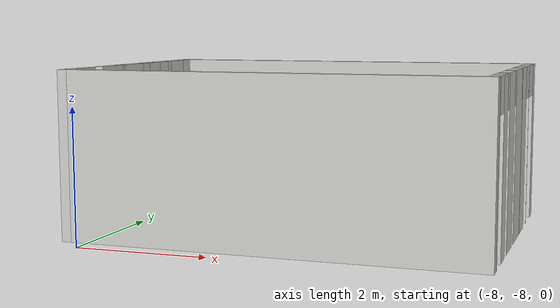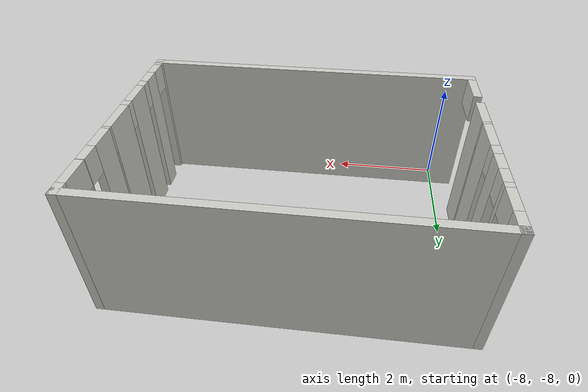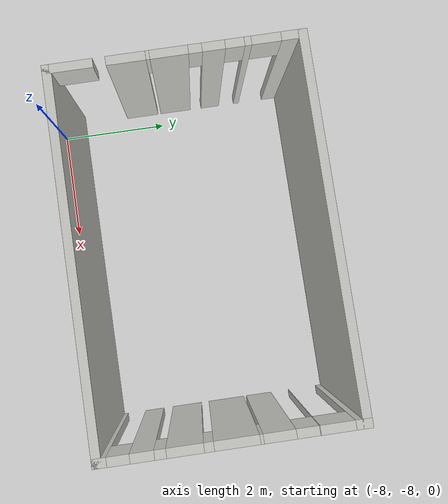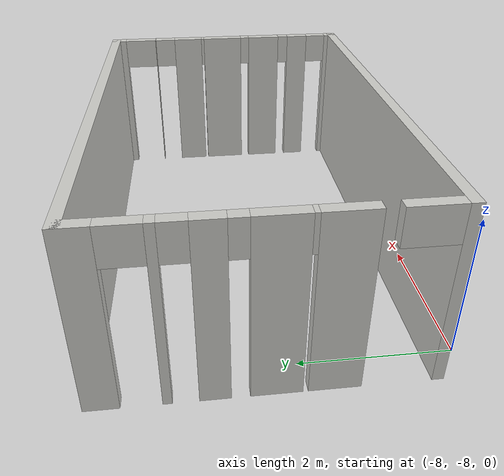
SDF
<?xml version='1.0'?>
<sdf version='1.7'>
  <model name='piste'>
    <pose>-4.20498 -3.85958 0 0 -0 0</pose>
    <link name='Wall_5'>
      <pose>-4.12998 -1.73458 0 0 -0 1.5708</pose>
      <visual name='Wall_5_Visual_0'>
        <pose>-2.0675 0 1.25 0 -0 0</pose>
        <geometry>
          <box>
            <size>0.115 0.15 2.5</size>
          </box>
        </geometry>
        <material>
          <script>
            <uri>file://media/materials/scripts/gazebo.material</uri>
            <name>Gazebo/CeilingTiled</name>
          </script>
          <ambient>1 1 1 1</ambient>
        </material>
        <meta>
          <layer>0</layer>
        </meta>
      </visual>
      <collision name='Wall_5_Collision_0'>
        <geometry>
          <box>
            <size>0.115 0.15 2.5</size>
          </box>
        </geometry>
        <pose>-2.0675 0 1.25 0 -0 0</pose>
      </collision>
      <visual name='Wall_5_Visual_1'>
        <pose>-0.79 0 1.25 0 -0 0</pose>
        <geometry>
          <box>
            <size>0.64 0.15 2.5</size>
          </box>
        </geometry>
        <material>
          <script>
            <uri>file://media/materials/scripts/gazebo.material</uri>
            <name>Gazebo/CeilingTiled</name>
          </script>
          <ambient>1 1 1 1</ambient>
        </material>
        <meta>
          <layer>0</layer>
        </meta>
      </visual>
      <collision name='Wall_5_Collision_1'>
        <geometry>
          <box>
            <size>0.64 0.15 2.5</size>
          </box>
        </geometry>
        <pose>-0.79 0 1.25 0 -0 0</pose>
      </collision>
      <visual name='Wall_5_Visual_2'>
        <pose>-0.1 0 1.25 0 -0 0</pose>
        <geometry>
          <box>
            <size>0.62 0.15 2.5</size>
          </box>
        </geometry>
        <material>
          <script>
            <uri>file://media/materials/scripts/gazebo.material</uri>
            <name>Gazebo/CeilingTiled</name>
          </script>
          <ambient>1 1 1 1</ambient>
        </material>
        <meta>
          <layer>0</layer>
        </meta>
      </visual>
      <collision name='Wall_5_Collision_2'>
        <geometry>
          <box>
            <size>0.62 0.15 2.5</size>
          </box>
        </geometry>
        <pose>-0.1 0 1.25 0 -0 0</pose>
      </collision>
      <visual name='Wall_5_Visual_3'>
        <pose>0.615 0 1.25 0 -0 0</pose>
        <geometry>
          <box>
            <size>0.37 0.15 2.5</size>
          </box>
        </geometry>
        <material>
          <script>
            <uri>file://media/materials/scripts/gazebo.material</uri>
            <name>Gazebo/CeilingTiled</name>
          </script>
          <ambient>1 1 1 1</ambient>
        </material>
        <meta>
          <layer>0</layer>
        </meta>
      </visual>
      <collision name='Wall_5_Collision_3'>
        <geometry>
          <box>
            <size>0.37 0.15 2.5</size>
          </box>
        </geometry>
        <pose>0.615 0 1.25 0 -0 0</pose>
      </collision>
      <visual name='Wall_5_Visual_4'>
        <pose>1.165 0 1.25 0 -0 0</pose>
        <geometry>
          <box>
            <size>0.11 0.15 2.5</size>
          </box>
        </geometry>
        <material>
          <script>
            <uri>file://media/materials/scripts/gazebo.material</uri>
            <name>Gazebo/CeilingTiled</name>
          </script>
          <ambient>1 1 1 1</ambient>
        </material>
        <meta>
          <layer>0</layer>
        </meta>
      </visual>
      <collision name='Wall_5_Collision_4'>
        <geometry>
          <box>
            <size>0.11 0.15 2.5</size>
          </box>
        </geometry>
        <pose>1.165 0 1.25 0 -0 0</pose>
      </collision>
      <visual name='Wall_5_Visual_5'>
        <pose>1.9125 0 1.25 0 -0 0</pose>
        <geometry>
          <box>
            <size>0.425 0.15 2.5</size>
          </box>
        </geometry>
        <material>
          <script>
            <uri>file://media/materials/scripts/gazebo.material</uri>
            <name>Gazebo/CeilingTiled</name>
          </script>
          <ambient>1 1 1 1</ambient>
        </material>
        <meta>
          <layer>0</layer>
        </meta>
      </visual>
      <collision name='Wall_5_Collision_5'>
        <geometry>
          <box>
            <size>0.425 0.15 2.5</size>
          </box>
        </geometry>
        <pose>1.9125 0 1.25 0 -0 0</pose>
      </collision>
      <visual name='Wall_5_Visual_6'>
        <pose>2.1225 0 1.25 0 -0 0</pose>
        <geometry>
          <box>
            <size>0.005 0.15 2.5</size>
          </box>
        </geometry>
        <material>
          <script>
            <uri>file://media/materials/scripts/gazebo.material</uri>
            <name>Gazebo/CeilingTiled</name>
          </script>
          <ambient>1 1 1 1</ambient>
        </material>
        <meta>
          <layer>0</layer>
        </meta>
      </visual>
      <collision name='Wall_5_Collision_6'>
        <geometry>
          <box>
            <size>0.005 0.15 2.5</size>
          </box>
        </geometry>
        <pose>2.1225 0 1.25 0 -0 0</pose>
      </collision>
      <visual name='Wall_5_Visual_7'>
        <pose>-1.66 0 2.25 0 -0 0</pose>
        <geometry>
          <box>
            <size>0.7 0.15 0.5</size>
          </box>
        </geometry>
        <material>
          <script>
            <uri>file://media/materials/scripts/gazebo.material</uri>
            <name>Gazebo/CeilingTiled</name>
          </script>
          <ambient>1 1 1 1</ambient>
        </material>
        <meta>
          <layer>0</layer>
        </meta>
      </visual>
      <collision name='Wall_5_Collision_7'>
        <geometry>
          <box>
            <size>0.7 0.15 0.5</size>
          </box>
        </geometry>
        <pose>-1.66 0 2.25 0 -0 0</pose>
      </collision>
      <visual name='Wall_5_Visual_8'>
        <pose>-0.44 0 2.25 0 -0 0</pose>
        <geometry>
          <box>
            <size>0.06 0.15 0.5</size>
          </box>
        </geometry>
        <material>
          <script>
            <uri>file://media/materials/scripts/gazebo.material</uri>
            <name>Gazebo/CeilingTiled</name>
          </script>
          <ambient>1 1 1 1</ambient>
        </material>
        <meta>
          <layer>0</layer>
        </meta>
      </visual>
      <collision name='Wall_5_Collision_8'>
        <geometry>
          <box>
            <size>0.06 0.15 0.5</size>
          </box>
        </geometry>
        <pose>-0.44 0 2.25 0 -0 0</pose>
      </collision>
      <visual name='Wall_5_Visual_9'>
        <pose>0.32 0 2.25 0 -0 0</pose>
        <geometry>
          <box>
            <size>0.22 0.15 0.5</size>
          </box>
        </geometry>
        <material>
          <script>
            <uri>file://media/materials/scripts/gazebo.material</uri>
            <name>Gazebo/CeilingTiled</name>
          </script>
          <ambient>1 1 1 1</ambient>
        </material>
        <meta>
          <layer>0</layer>
        </meta>
      </visual>
      <collision name='Wall_5_Collision_9'>
        <geometry>
          <box>
            <size>0.22 0.15 0.5</size>
          </box>
        </geometry>
        <pose>0.32 0 2.25 0 -0 0</pose>
      </collision>
      <visual name='Wall_5_Visual_10'>
        <pose>0.955 0 2.25 0 -0 0</pose>
        <geometry>
          <box>
            <size>0.31 0.15 0.5</size>
          </box>
        </geometry>
        <material>
          <script>
            <uri>file://media/materials/scripts/gazebo.material</uri>
            <name>Gazebo/CeilingTiled</name>
          </script>
          <ambient>1 1 1 1</ambient>
        </material>
        <meta>
          <layer>0</layer>
        </meta>
      </visual>
      <collision name='Wall_5_Collision_10'>
        <geometry>
          <box>
            <size>0.31 0.15 0.5</size>
          </box>
        </geometry>
        <pose>0.955 0 2.25 0 -0 0</pose>
      </collision>
      <visual name='Wall_5_Visual_11'>
        <pose>1.46 0 2.25 0 -0 0</pose>
        <geometry>
          <box>
            <size>0.48 0.15 0.5</size>
          </box>
        </geometry>
        <material>
          <script>
            <uri>file://media/materials/scripts/gazebo.material</uri>
            <name>Gazebo/CeilingTiled</name>
          </script>
          <ambient>1 1 1 1</ambient>
        </material>
        <meta>
          <layer>0</layer>
        </meta>
      </visual>
      <collision name='Wall_5_Collision_11'>
        <geometry>
          <box>
            <size>0.48 0.15 0.5</size>
          </box>
        </geometry>
        <pose>1.46 0 2.25 0 -0 0</pose>
      </collision>
    </link>
    <link name='Wall_6'>
      <collision name='Wall_6_Collision'>
        <geometry>
          <box>
            <size>6.25 0.15 2.5</size>
          </box>
        </geometry>
        <pose>0 0 1.25 0 -0 0</pose>
      </collision>
      <visual name='Wall_6_Visual'>
        <pose>0 0 1.25 0 -0 0</pose>
        <geometry>
          <box>
            <size>6.25 0.15 2.5</size>
          </box>
        </geometry>
        <material>
          <script>
            <uri>file://media/materials/scripts/gazebo.material</uri>
            <name>Gazebo/CeilingTiled</name>
          </script>
          <ambient>1 1 1 1</ambient>
        </material>
        <meta>
          <layer>0</layer>
        </meta>
      </visual>
      <pose>-1.07998 0.315418 0 0 -0 0</pose>
    </link>
    <link name='Wall_7'>
      <pose>1.97002 -1.73458 0 0 -0 -1.5708</pose>
      <visual name='Wall_7_Visual_0'>
        <pose>-1.9975 0 1.25 0 -0 0</pose>
        <geometry>
          <box>
            <size>0.255 0.15 2.5</size>
          </box>
        </geometry>
        <material>
          <script>
            <uri>file://media/materials/scripts/gazebo.material</uri>
            <name>Gazebo/CeilingTiled</name>
          </script>
          <ambient>1 1 1 1</ambient>
        </material>
        <meta>
          <layer>0</layer>
        </meta>
      </visual>
      <collision name='Wall_7_Collision_0'>
        <geometry>
          <box>
            <size>0.255 0.15 2.5</size>
          </box>
        </geometry>
        <pose>-1.9975 0 1.25 0 -0 0</pose>
      </collision>
      <visual name='Wall_7_Visual_1'>
        <pose>-1.325 0 1.25 0 -0 0</pose>
        <geometry>
          <box>
            <size>0.01 0.15 2.5</size>
          </box>
        </geometry>
        <material>
          <script>
            <uri>file://media/materials/scripts/gazebo.material</uri>
            <name>Gazebo/CeilingTiled</name>
          </script>
          <ambient>1 1 1 1</ambient>
        </material>
        <meta>
          <layer>0</layer>
        </meta>
      </visual>
      <collision name='Wall_7_Collision_1'>
        <geometry>
          <box>
            <size>0.01 0.15 2.5</size>
          </box>
        </geometry>
        <pose>-1.325 0 1.25 0 -0 0</pose>
      </collision>
      <visual name='Wall_7_Visual_2'>
        <pose>-0.72 0 1.25 0 -0 0</pose>
        <geometry>
          <box>
            <size>0.5 0.15 2.5</size>
          </box>
        </geometry>
        <material>
          <script>
            <uri>file://media/materials/scripts/gazebo.material</uri>
            <name>Gazebo/CeilingTiled</name>
          </script>
          <ambient>1 1 1 1</ambient>
        </material>
        <meta>
          <layer>0</layer>
        </meta>
      </visual>
      <collision name='Wall_7_Collision_2'>
        <geometry>
          <box>
            <size>0.5 0.15 2.5</size>
          </box>
        </geometry>
        <pose>-0.72 0 1.25 0 -0 0</pose>
      </collision>
      <visual name='Wall_7_Visual_3'>
        <pose>-0.07 0 1.25 0 -0 0</pose>
        <geometry>
          <box>
            <size>0.7 0.15 2.5</size>
          </box>
        </geometry>
        <material>
          <script>
            <uri>file://media/materials/scripts/gazebo.material</uri>
            <name>Gazebo/CeilingTiled</name>
          </script>
          <ambient>1 1 1 1</ambient>
        </material>
        <meta>
          <layer>0</layer>
        </meta>
      </visual>
      <collision name='Wall_7_Collision_3'>
        <geometry>
          <box>
            <size>0.7 0.15 2.5</size>
          </box>
        </geometry>
        <pose>-0.07 0 1.25 0 -0 0</pose>
      </collision>
      <visual name='Wall_7_Visual_4'>
        <pose>0.715 0 1.25 0 -0 0</pose>
        <geometry>
          <box>
            <size>0.57 0.15 2.5</size>
          </box>
        </geometry>
        <material>
          <script>
            <uri>file://media/materials/scripts/gazebo.material</uri>
            <name>Gazebo/CeilingTiled</name>
          </script>
          <ambient>1 1 1 1</ambient>
        </material>
        <meta>
          <layer>0</layer>
        </meta>
      </visual>
      <collision name='Wall_7_Collision_4'>
        <geometry>
          <box>
            <size>0.57 0.15 2.5</size>
          </box>
        </geometry>
        <pose>0.715 0 1.25 0 -0 0</pose>
      </collision>
      <visual name='Wall_7_Visual_5'>
        <pose>1.365 0 1.25 0 -0 0</pose>
        <geometry>
          <box>
            <size>0.37 0.15 2.5</size>
          </box>
        </geometry>
        <material>
          <script>
            <uri>file://media/materials/scripts/gazebo.material</uri>
            <name>Gazebo/CeilingTiled</name>
          </script>
          <ambient>1 1 1 1</ambient>
        </material>
        <meta>
          <layer>0</layer>
        </meta>
      </visual>
      <collision name='Wall_7_Collision_5'>
        <geometry>
          <box>
            <size>0.37 0.15 2.5</size>
          </box>
        </geometry>
        <pose>1.365 0 1.25 0 -0 0</pose>
      </collision>
      <visual name='Wall_7_Visual_6'>
        <pose>2.0125 0 1.25 0 -0 0</pose>
        <geometry>
          <box>
            <size>0.225 0.15 2.5</size>
          </box>
        </geometry>
        <material>
          <script>
            <uri>file://media/materials/scripts/gazebo.material</uri>
            <name>Gazebo/CeilingTiled</name>
          </script>
          <ambient>1 1 1 1</ambient>
        </material>
        <meta>
          <layer>0</layer>
        </meta>
      </visual>
      <collision name='Wall_7_Collision_6'>
        <geometry>
          <box>
            <size>0.225 0.15 2.5</size>
          </box>
        </geometry>
        <pose>2.0125 0 1.25 0 -0 0</pose>
      </collision>
      <visual name='Wall_7_Visual_7'>
        <pose>-1.6 0 2.25 0 -0 0</pose>
        <geometry>
          <box>
            <size>0.54 0.15 0.5</size>
          </box>
        </geometry>
        <material>
          <script>
            <uri>file://media/materials/scripts/gazebo.material</uri>
            <name>Gazebo/CeilingTiled</name>
          </script>
          <ambient>1 1 1 1</ambient>
        </material>
        <meta>
          <layer>0</layer>
        </meta>
      </visual>
      <collision name='Wall_7_Collision_7'>
        <geometry>
          <box>
            <size>0.54 0.15 0.5</size>
          </box>
        </geometry>
        <pose>-1.6 0 2.25 0 -0 0</pose>
      </collision>
      <visual name='Wall_7_Visual_8'>
        <pose>-1.145 0 2.25 0 -0 0</pose>
        <geometry>
          <box>
            <size>0.35 0.15 0.5</size>
          </box>
        </geometry>
        <material>
          <script>
            <uri>file://media/materials/scripts/gazebo.material</uri>
            <name>Gazebo/CeilingTiled</name>
          </script>
          <ambient>1 1 1 1</ambient>
        </material>
        <meta>
          <layer>0</layer>
        </meta>
      </visual>
      <collision name='Wall_7_Collision_8'>
        <geometry>
          <box>
            <size>0.35 0.15 0.5</size>
          </box>
        </geometry>
        <pose>-1.145 0 2.25 0 -0 0</pose>
      </collision>
      <visual name='Wall_7_Visual_9'>
        <pose>-0.445 0 2.25 0 -0 0</pose>
        <geometry>
          <box>
            <size>0.05 0.15 0.5</size>
          </box>
        </geometry>
        <material>
          <script>
            <uri>file://media/materials/scripts/gazebo.material</uri>
            <name>Gazebo/CeilingTiled</name>
          </script>
          <ambient>1 1 1 1</ambient>
        </material>
        <meta>
          <layer>0</layer>
        </meta>
      </visual>
      <collision name='Wall_7_Collision_9'>
        <geometry>
          <box>
            <size>0.05 0.15 0.5</size>
          </box>
        </geometry>
        <pose>-0.445 0 2.25 0 -0 0</pose>
      </collision>
      <visual name='Wall_7_Visual_10'>
        <pose>0.355 0 2.25 0 -0 0</pose>
        <geometry>
          <box>
            <size>0.15 0.15 0.5</size>
          </box>
        </geometry>
        <material>
          <script>
            <uri>file://media/materials/scripts/gazebo.material</uri>
            <name>Gazebo/CeilingTiled</name>
          </script>
          <ambient>1 1 1 1</ambient>
        </material>
        <meta>
          <layer>0</layer>
        </meta>
      </visual>
      <collision name='Wall_7_Collision_10'>
        <geometry>
          <box>
            <size>0.15 0.15 0.5</size>
          </box>
        </geometry>
        <pose>0.355 0 2.25 0 -0 0</pose>
      </collision>
      <visual name='Wall_7_Visual_11'>
        <pose>1.09 0 2.25 0 -0 0</pose>
        <geometry>
          <box>
            <size>0.18 0.15 0.5</size>
          </box>
        </geometry>
        <material>
          <script>
            <uri>file://media/materials/scripts/gazebo.material</uri>
            <name>Gazebo/CeilingTiled</name>
          </script>
          <ambient>1 1 1 1</ambient>
        </material>
        <meta>
          <layer>0</layer>
        </meta>
      </visual>
      <collision name='Wall_7_Collision_11'>
        <geometry>
          <box>
            <size>0.18 0.15 0.5</size>
          </box>
        </geometry>
        <pose>1.09 0 2.25 0 -0 0</pose>
      </collision>
      <visual name='Wall_7_Visual_12'>
        <pose>1.725 0 2.25 0 -0 0</pose>
        <geometry>
          <box>
            <size>0.35 0.15 0.5</size>
          </box>
        </geometry>
        <material>
          <script>
            <uri>file://media/materials/scripts/gazebo.material</uri>
            <name>Gazebo/CeilingTiled</name>
          </script>
          <ambient>1 1 1 1</ambient>
        </material>
        <meta>
          <layer>0</layer>
        </meta>
      </visual>
      <collision name='Wall_7_Collision_12'>
        <geometry>
          <box>
            <size>0.35 0.15 0.5</size>
          </box>
        </geometry>
        <pose>1.725 0 2.25 0 -0 0</pose>
      </collision>
    </link>
    <link name='Wall_8'>
      <collision name='Wall_8_Collision'>
        <geometry>
          <box>
            <size>6.25 0.15 2.5</size>
          </box>
        </geometry>
        <pose>0 0 1.25 0 -0 0</pose>
      </collision>
      <visual name='Wall_8_Visual'>
        <pose>0 0 1.25 0 -0 0</pose>
        <geometry>
          <box>
            <size>6.25 0.15 2.5</size>
          </box>
        </geometry>
        <material>
          <script>
            <uri>file://media/materials/scripts/gazebo.material</uri>
            <name>Gazebo/CeilingTiled</name>
          </script>
          <ambient>1 1 1 1</ambient>
        </material>
        <meta>
          <layer>0</layer>
        </meta>
      </visual>
      <pose>-1.07998 -3.78458 0 0 -0 3.14159</pose>
    </link>
    <static>1</static>
  </model>
</sdf>
